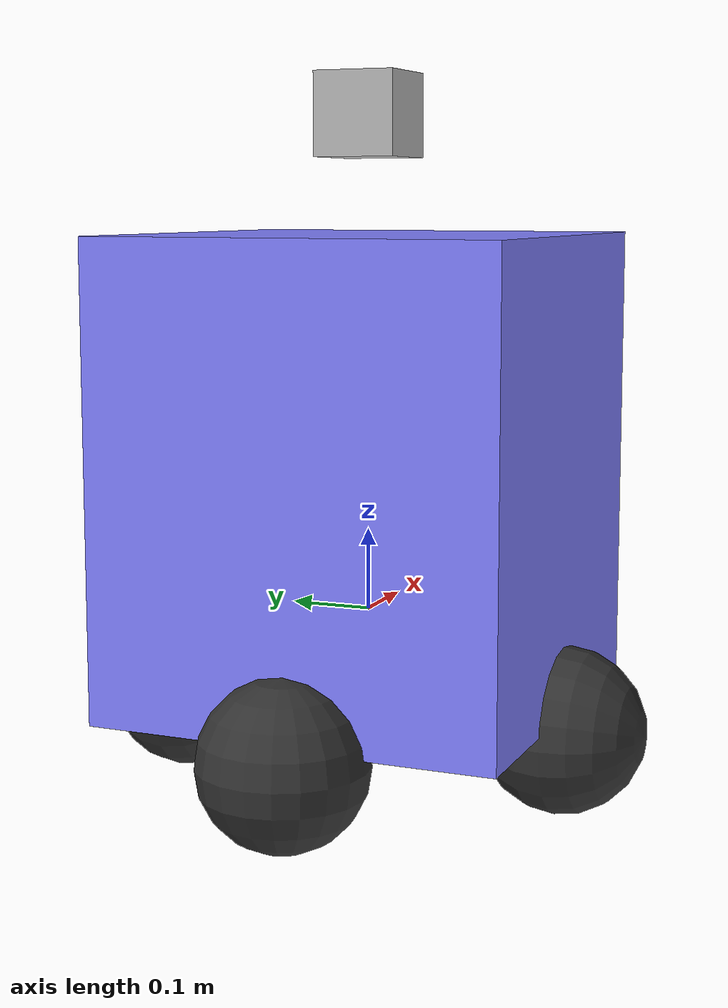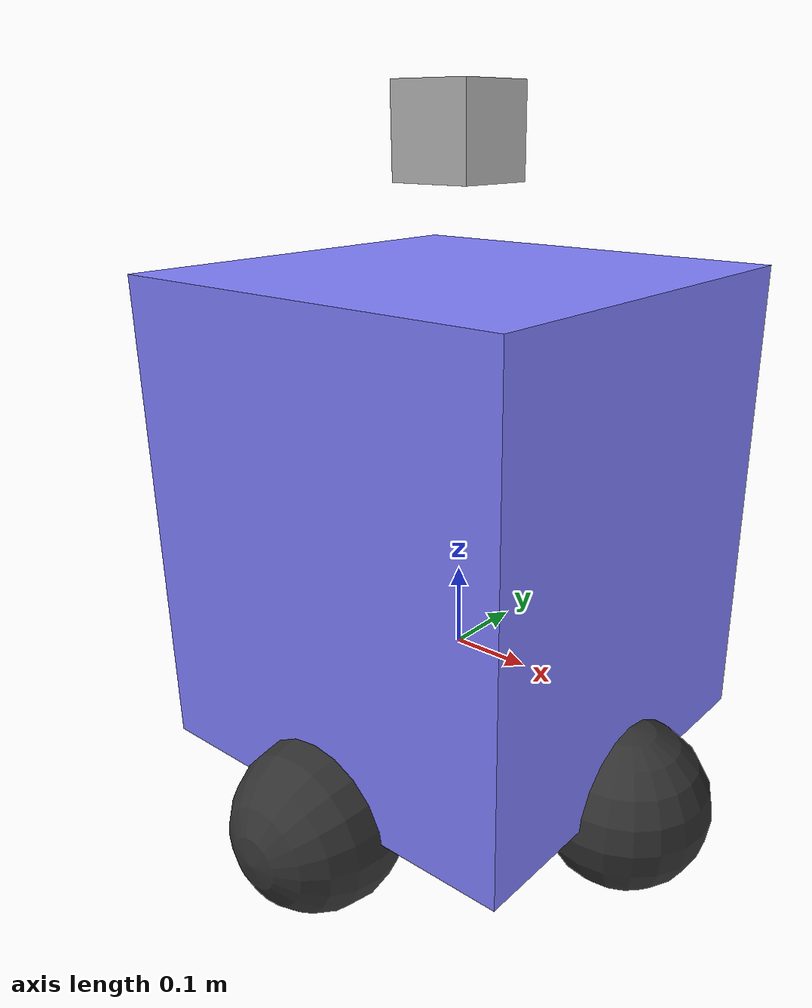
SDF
<?xml version="1.0" ?>
<sdf version="1.8">
    <model name='diff_drive'>
      <link name='base_link'>
        <pose>0.0 -0 0.175 0 -0 0</pose>
        <inertial>
          <mass>1.14395</mass>
          <inertia>
            <ixx>0.126164</ixx>
            <ixy>0</ixy>
            <ixz>0</ixz>
            <iyy>0.416519</iyy>
            <iyz>0</iyz>
            <izz>0.481014</izz>
          </inertia>
        </inertial>
        <visual name='visual_base_link'>
          <geometry>
            <box>
              <size>0.5 0.5 0.568726</size>
            </box>
          </geometry>
          <material>
            <ambient>0.5 0.5 1.0 1</ambient>
            <diffuse>0.5 0.5 1.0 1</diffuse>
            <specular>0.0 0.0 1.0 1</specular>
          </material>
        </visual>
        <collision name='collision_base_link'>
          <geometry>
            <box>
              <size>0.5 0.5 0.568726</size>
            </box>
          </geometry>
        </collision>
      </link>

      <link name='left_wheel'>
        <pose>0.0 0.25 -0.125 -1.5707 0 0</pose>
        <inertial>
          <mass>2</mass>
          <inertia>
            <ixx>0.145833</ixx>
            <ixy>0</ixy>
            <ixz>0</ixz>
            <iyy>0.145833</iyy>
            <iyz>0</iyz>
            <izz>0.125</izz>
          </inertia>
        </inertial>
        <visual name='visual_left_wheel'>
          <geometry>
            <sphere>
              <radius>0.1</radius>
            </sphere>
          </geometry>
          <material>
            <ambient>0.2 0.2 0.2 1</ambient>
            <diffuse>0.2 0.2 0.2 1</diffuse>
            <specular>0.2 0.2 0.2 1</specular>
          </material>
        </visual>
        <collision name='collision_left_wheel'>
          <geometry>
            <sphere>
              <radius>0.1</radius>
            </sphere>
          </geometry>
        </collision>
      </link>

      <link name='right_wheel'>
        <pose>0.0 -0.25 -0.125 -1.5707 0 0</pose>
        <inertial>
          <mass>2</mass>
          <inertia>
            <ixx>0.145833</ixx>
            <ixy>0</ixy>
            <ixz>0</ixz>
            <iyy>0.145833</iyy>
            <iyz>0</iyz>
            <izz>0.125</izz>
          </inertia>
        </inertial>
        <visual name='visual_right_wheel'>
          <geometry>
            <sphere>
              <radius>0.1</radius>
            </sphere>
          </geometry>
          <material>
            <ambient>0.2 0.2 0.2 1</ambient>
            <diffuse>0.2 0.2 0.2 1</diffuse>
            <specular>0.2 0.2 0.2 1</specular>
          </material>
        </visual>
        <collision name='collision_right_wheel'>
          <geometry>
            <sphere>
              <radius>0.1</radius>
            </sphere>
          </geometry>
        </collision>
      </link>

      <link name='caster_0'>
        <pose>0.25 0 -0.125 0 -0 0</pose>
        <inertial>
          <mass>1</mass>
          <inertia>
            <ixx>0.1</ixx>
            <ixy>0</ixy>
            <ixz>0</ixz>
            <iyy>0.1</iyy>
            <iyz>0</iyz>
            <izz>0.1</izz>
          </inertia>
        </inertial>
        <visual name='visual_caster'>
          <geometry>
            <sphere>
              <radius>0.1</radius>
            </sphere>
          </geometry>
          <material>
            <ambient>0.2 0.2 0.2 1</ambient>
            <diffuse>0.2 0.2 0.2 1</diffuse>
            <specular>0.2 0.2 0.2 1</specular>
          </material>
        </visual>
        <collision name='collision_caster'>
          <geometry>
            <sphere>
              <radius>0.1</radius>
            </sphere>
          </geometry>
        </collision>
      </link>

      <link name='caster_1'>
        <pose>-0.25 -0 -0.125 0 -0 0</pose>
        <inertial>
          <mass>1</mass>
          <inertia>
            <ixx>0.1</ixx>
            <ixy>0</ixy>
            <ixz>0</ixz>
            <iyy>0.1</iyy>
            <iyz>0</iyz>
            <izz>0.1</izz>
          </inertia>
        </inertial>
        <visual name='visual_caster'>
          <geometry>
            <sphere>
              <radius>0.1</radius>
            </sphere>
          </geometry>
          <material>
            <ambient>0.2 0.2 0.2 1</ambient>
            <diffuse>0.2 0.2 0.2 1</diffuse>
            <specular>0.2 0.2 0.2 1</specular>
          </material>
        </visual>
        <collision name='collision_caster'>
          <geometry>
            <sphere>
              <radius>0.1</radius>
            </sphere>
          </geometry>
        </collision>
      </link>

      <link name="lidar_link">
        <pose>0 0 0.60 0 0 0</pose>
        <inertial>
          <mass>0.1</mass>
          <inertia>
            <ixx>0.000166667</ixx>
            <iyy>0.000166667</iyy>
            <izz>0.000166667</izz>
          </inertia>
        </inertial>
        <collision name="collision">
          <geometry>
            <box>
              <size>0.1 0.1 0.1</size>
            </box>
          </geometry>
        </collision>
        <visual name="visual">
          <geometry>
            <box>
              <size>0.1 0.1 0.1</size>
            </box>
          </geometry>
        </visual>
        <sensor name='gpu_lidar' type='gpu_lidar'>
          <pose>0 0 0 0 0 0</pose>
          <topic>model/diff_drive/lidar</topic>
          <gz_frame_id>diff_drive/lidar_link</gz_frame_id>
          <update_rate>1</update_rate>
          <lidar>
            <scan>
              <horizontal>
                <samples>1200</samples>
                <resolution>1</resolution>
                <min_angle>-2.7</min_angle>
                <max_angle>2.7</max_angle>
              </horizontal>
              <vertical>
                <samples>16</samples>
                <resolution>1</resolution>
                <min_angle>-0.261799</min_angle>
                <max_angle>0.261799</max_angle>
              </vertical>
            </scan>
            <range>
              <min>0.08</min>
              <max>10.0</max>
              <resolution>0.01</resolution>
            </range>
          </lidar>
          <visualize>true</visualize>
        </sensor>
      </link>

      <joint name='lidar_joint' type='fixed'>
        <child>lidar_link</child>
        <parent>base_link</parent>
      </joint>

      <!-- Define the IMU link -->
      <link name="imu_link">
      <!-- IMU link properties go here -->
        <!-- Define the IMU sensor -->
        <sensor name="imu_sensor" type="imu">
          <gz_frame_id>diff_drive/imu_link</gz_frame_id>
          <always_on>1</always_on>
	      <update_rate>100</update_rate>
	      <visualize>true</visualize>
	      <topic>model/diff_drive/imu</topic>
          <enable_metrics>true</enable_metrics>
          <parent>imu_link</parent> <!-- Attach the sensor to the IMU link -->
        </sensor>
      </link>

      <!-- Define the IMU joint -->
      <joint name="imu_joint" type="fixed">
	    <child>imu_link</child>
        <parent>base_link</parent> <!-- Replace with the parent link name -->
        <pose>0 0 0 0 0 0</pose>
      </joint>

      <joint name='left_wheel_joint' type='revolute'>
        <child>left_wheel</child>
        <parent>base_link</parent>
        <axis>
          <xyz>0 0 1</xyz>
          <limit>
            <lower>-1.79769e+308</lower>
            <upper>1.79769e+308</upper>
          </limit>
        </axis>
      </joint>

      <joint name='right_wheel_joint' type='revolute'>
        <child>right_wheel</child>
        <parent>base_link</parent>
        <axis>
          <xyz>0 0 1</xyz>
          <limit>
            <lower>-1.79769e+308</lower>
            <upper>1.79769e+308</upper>
          </limit>
        </axis>
      </joint>

      <joint name='caster_0_joint' type='ball'>
        <child>caster_0</child>
        <parent>base_link</parent>
      </joint>

      <joint name='caster_1_joint' type='ball'>
        <child>caster_1</child>
        <parent>base_link</parent>
      </joint>

      <link name="navsat_link">
        <pose>0 0.0 0.05 0 0 0</pose>
        <inertial>
          <mass>0.1</mass>
          <inertia>
            <ixx>0.000166667</ixx>
            <iyy>0.000166667</iyy>
            <izz>0.000166667</izz>
          </inertia>
        </inertial>
        <collision name="collision">
          <geometry>
            <box>
              <size>0.1 0.1 0.1</size>
            </box>
          </geometry>
        </collision>
        <visual name="visual">
          <geometry>
            <box>
              <size>0.1 0.1 0.1</size>
            </box>
          </geometry>
        </visual>
        <sensor name='navsat' type='navsat'>
          <topic>model/diff_drive/navsat</topic>
          <gz_frame_id>diff_drive/navsat_link</gz_frame_id>
          <update_rate>1</update_rate>
          <always_on>1</always_on>
        </sensor>
      </link>

      <joint name='navsat_joint' type='fixed'>
        <child>navsat_link</child>
        <parent>base_link</parent>
      </joint>

      <plugin
        filename="gz-sim-diff-drive-system"
        name="gz::sim::systems::DiffDrive">
        <left_joint>left_wheel_joint</left_joint>
        <right_joint>right_wheel_joint</right_joint>
        <wheel_separation>0.50</wheel_separation>
        <wheel_radius>0.1</wheel_radius>
        <frame_id>diff_drive/odom</frame_id>
        <child_id>diff_drive/base_link</child_id>
        <odom_publish_frequency>50</odom_publish_frequency>
        <max_linear_acceleration>1</max_linear_acceleration>
        <min_linear_acceleration>-1</min_linear_acceleration>
        <max_angular_acceleration>2</max_angular_acceleration>
        <min_angular_acceleration>-2</min_angular_acceleration>
        <max_linear_velocity>1.0</max_linear_velocity>
        <min_linear_velocity>-1.0</min_linear_velocity>
        <max_angular_velocity>1</max_angular_velocity>
        <min_angular_velocity>-1</min_angular_velocity>
      </plugin>
    </model>
</sdf>
